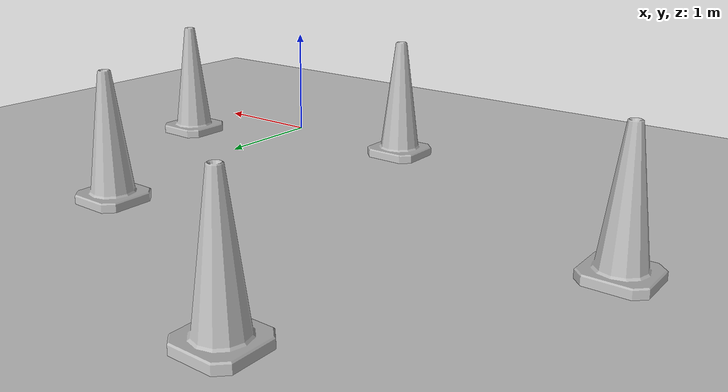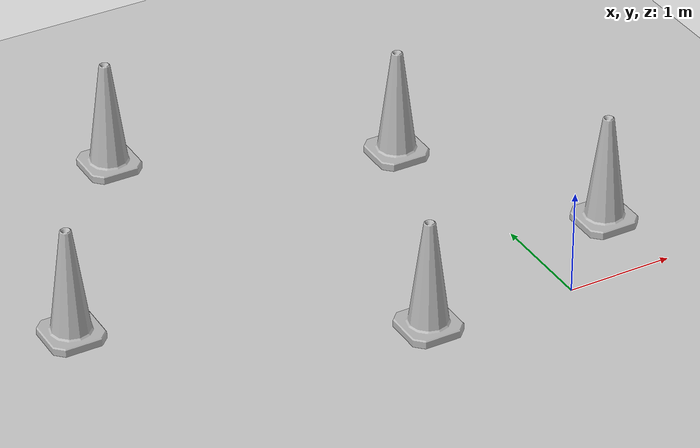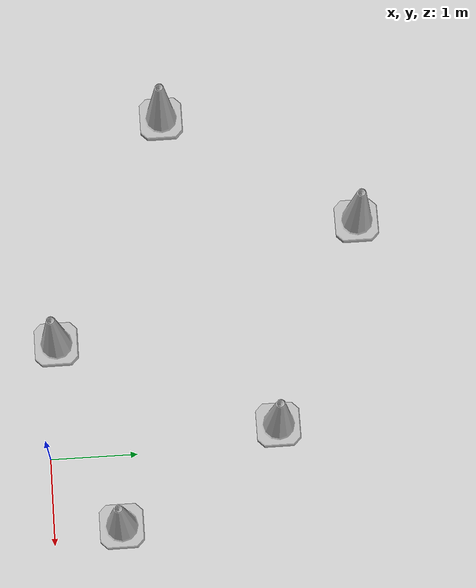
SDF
<sdf version="1.7">
 <world name="default">
  <light name="sun" type="directional">
   <pose>0 0 10 0 -0 0</pose>
   <diffuse>0.8 0.8 0.8 1</diffuse>
   <specular>0.2 0.2 0.2 1</specular>
   <attenuation>
    <range>1000</range>
    <constant>0.9</constant>
    <linear>0.01</linear>
    <quadratic>0.001</quadratic>
   </attenuation>
   <direction>-0.5 0.1 -0.9</direction>
   <spot><inner_angle>0</inner_angle><outer_angle>0</outer_angle><falloff>0</falloff></spot>
  </light>
  <model name="ground_plane">
   <static>1</static>
   <link name="link">
    <collision name="collision">
     <geometry><plane><normal>0 0 1</normal><size>100 100</size></plane></geometry>
     <surface>
      <contact><collide_bitmask>65535</collide_bitmask></contact>
      <friction><ode><mu>100</mu><mu2>50</mu2></ode></friction>
     </surface>
    </collision>
    <visual name="visual">
     <cast_shadows>0</cast_shadows>
     <geometry><plane><normal>0 0 1</normal><size>100 100</size></plane></geometry>
     <material>
      <script><uri>file://media/materials/scripts/gazebo.material</uri><name>Gazebo/Grey</name></script>
     </material>
    </visual>
   </link>
  </model>
  <gravity>0 0 -9.8</gravity>
  <magnetic_field>6e-06 2.3e-05 -4.2e-05</magnetic_field>
  <atmosphere type="adiabatic"/>
  <physics type="ode">
   <max_step_size>0.001</max_step_size>
   <real_time_factor>1</real_time_factor>
   <real_time_update_rate>1000</real_time_update_rate>
  </physics>
  <scene><ambient>0.4 0.4 0.4 1</ambient><background>0.7 0.7 0.7 1</background><shadows>1</shadows></scene>
  <audio><device>default</device></audio>
  <spherical_coordinates>
   <surface_model>EARTH_WGS84</surface_model>
   <latitude_deg>0</latitude_deg>
   <longitude_deg>0</longitude_deg>
   <elevation>0</elevation>
   <heading_deg>0</heading_deg>
  </spherical_coordinates>
  <model name="Construction Cone">
   <link name="link">
    <collision name="collision">
     <geometry>
      <mesh><scale>10 10 10</scale><uri>model://construction_cone/meshes/construction_cone.dae</uri></mesh>
     </geometry>
    </collision>
    <visual name="visual">
     <geometry>
      <mesh><scale>10 10 10</scale><uri>model://construction_cone/meshes/construction_cone.dae</uri></mesh>
     </geometry>
    </visual>
    <inertial>
     <inertia><ixx>1</ixx><ixy>0</ixy><ixz>0</ixz><iyy>1</iyy><iyz>0</iyz><izz>1</izz></inertia>
     <mass>1</mass>
    </inertial>
   </link>
   <pose>-2.62741 3.74346 -0 0 -0 0</pose>
  </model>
  <model name="Construction Cone_clone">
   <link name="link">
    <collision name="collision">
     <geometry>
      <mesh><scale>10 10 10</scale><uri>model://construction_cone/meshes/construction_cone.dae</uri></mesh>
     </geometry>
    </collision>
    <visual name="visual">
     <geometry>
      <mesh><scale>10 10 10</scale><uri>model://construction_cone/meshes/construction_cone.dae</uri></mesh>
     </geometry>
    </visual>
    <inertial>
     <inertia><ixx>1</ixx><ixy>0</ixy><ixz>0</ixz><iyy>1</iyy><iyz>0</iyz><izz>1</izz></inertia>
     <mass>1</mass>
    </inertial>
   </link>
   <pose>-4.05588 1.52005 -0 0 -1e-06 0</pose>
  </model>
  <model name="Construction Cone_clone_0">
   <link name="link">
    <collision name="collision">
     <geometry>
      <mesh><scale>10 10 10</scale><uri>model://construction_cone/meshes/construction_cone.dae</uri></mesh>
     </geometry>
    </collision>
    <visual name="visual">
     <geometry>
      <mesh><scale>10 10 10</scale><uri>model://construction_cone/meshes/construction_cone.dae</uri></mesh>
     </geometry>
    </visual>
    <inertial>
     <inertia><ixx>1</ixx><ixy>0</ixy><ixz>0</ixz><iyy>1</iyy><iyz>0</iyz><izz>1</izz></inertia>
     <mass>1</mass>
    </inertial>
   </link>
   <pose>-0.229881 2.63719 -0 0 -1e-06 0</pose>
  </model>
  <model name="Construction Cone_clone_1">
   <link name="link">
    <collision name="collision">
     <geometry>
      <mesh><scale>10 10 10</scale><uri>model://construction_cone/meshes/construction_cone.dae</uri></mesh>
     </geometry>
    </collision>
    <visual name="visual">
     <geometry>
      <mesh><scale>10 10 10</scale><uri>model://construction_cone/meshes/construction_cone.dae</uri></mesh>
     </geometry>
    </visual>
    <inertial>
     <inertia><ixx>1</ixx><ixy>0</ixy><ixz>0</ixz><iyy>1</iyy><iyz>0</iyz><izz>1</izz></inertia>
     <mass>1</mass>
    </inertial>
   </link>
   <pose>0.833296 0.769261 -0 1e-06 -0 0</pose>
  </model>
  <model name="Construction Cone_clone_2">
   <link name="link">
    <collision name="collision">
     <geometry>
      <mesh><scale>10 10 10</scale><uri>model://construction_cone/meshes/construction_cone.dae</uri></mesh>
     </geometry>
    </collision>
    <visual name="visual">
     <geometry>
      <mesh><scale>10 10 10</scale><uri>model://construction_cone/meshes/construction_cone.dae</uri></mesh>
     </geometry>
    </visual>
    <inertial>
     <inertia><ixx>1</ixx><ixy>0</ixy><ixz>0</ixz><iyy>1</iyy><iyz>0</iyz><izz>1</izz></inertia>
     <mass>1</mass>
    </inertial>
   </link>
   <pose>-1.35731 0.131714 -0 0 -1e-06 0</pose>
  </model>
 </world>
</sdf>
